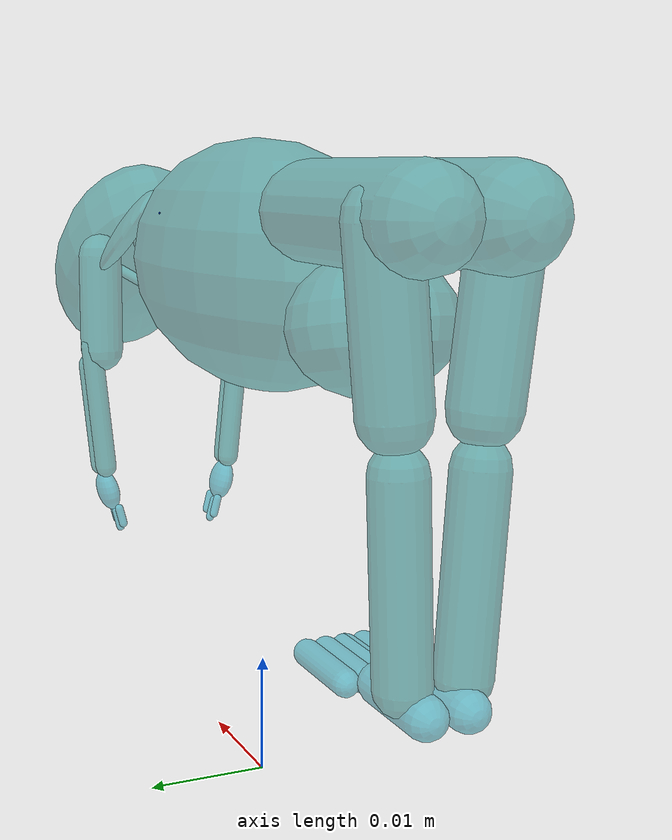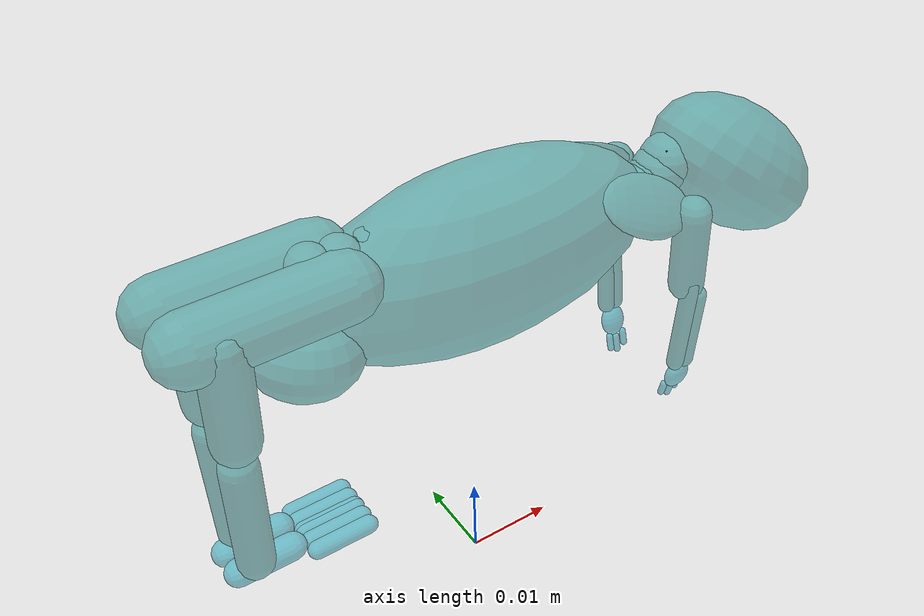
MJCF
<mujoco model="CyberMice">
    <compiler meshdir="meshes" balanceinertia="true" angle="radian" eulerseq="xyz" />

    <option timestep="0.002" />
    <size njmax="1000" nconmax="400" nkey="1" nuser_jnt="1" />
    <statistic extent="1" />

    <default class="main">
        <joint limited="true" stiffness=".0" armature="1e-05" damping="1e-05" />
        <site rgba="0 0 0.8 1" size="0.0001 0.0001 0.0001" />
        <tendon limited="false" width="0.0001" rgba="0.95 0.3 0.3 1" />
        <default class="forelimbs">
            <geom type="mesh" contype="3" conaffinity="2" friction="0.7" solref="0.015 1" solimp="0.95 0.99 0.003" material="bone" />
        </default>
        <default class="muscle">
            <general ctrllimited="true" ctrlrange="0 1" dyntype="muscle" gaintype="muscle" biastype="muscle" dynprm="0.01 0.04 0 0 0 0 0 0 0 0" gainprm="0.75 1.05 -1 200 0.5 1.6 1.5 1.3 1.2 0" biasprm="0.75 1.05 -1 200 0.5 1.6 1.5 1.3 1.2 0" />
        </default>
        <default class="motor">
            <general gainprm="5 0 0 0 0 0 0 0 0 0" />
        </default>
        <default class="sensor">
            <site group="4" />
        </default>

        <default class="Lumbar">
            <joint group="3" pos="0.003 0 -0.003" armature="1e-05" damping="0.03"/>
            <general gainprm="0.15"/>
            <default class="Lumbar_x">
                <joint stiffness="0.03" range="-0.25 0.25"/>
                <tendon range="-1 1"/>
            </default>
            <default class="Lumbar_y">
                <joint stiffness="0.03" range="-0.25 0.25"/>
                <tendon range="-1 1"/>
            </default>
            <default class="Lumbar_z">
                <joint stiffness="0.02" range="-0.25 0.25"/>
                <tendon range="-1 1"/>
                <general gainprm="0.4"/>
            </default>
        </default>

        <default class="Cervical">
            <joint group="3" pos="-0.02 0 -0.05" stiffness="2.0" armature="0.001" damping="1.0"/>
            <default class="Cervical_x">
                <joint range="-0.18 0.18"/>
                <tendon range="-1 1"/>
                <general gainprm="2.5"/>
            </default>
            <default class="Cervical_y">
                <joint range="-0.18 0.18"/>
                <tendon range="-1 1"/>
                <general gainprm="2.5"/>
            </default>
            <default class="Cervical_z">
                <joint range="-0.18 0.18"/>
                <tendon range="-1 1"/>
                <general gainprm="2.5"/>
            </default>
        </default>

        <default class="Caudal">
            <joint group="3" stiffness="1e-05" damping="0.002"/>
            <general gainprm="0.005"/>
            <default class="Caudal_z">
                <joint range="-0.08726646259971647 0.08726646259971647"/>
                <tendon range="-0.05 0.05"/>
            </default>
            <default class="Caudal_y">
                <joint range="-0.08726646259971647 0.08726646259971647"/>
                <tendon range="-0.2 0.2"/>
            </default>
            <default class="Caudal_x">
                <joint range="-0.08726646259971647 0.08726646259971647"/>
                <tendon range="-0.2 0.2"/>
            </default>
        </default>

        <default class="collision">
            <geom contype="1" conaffinity="1" condim="1" group="1"/>
            <default class="collision_primitive">
                <geom type="capsule" group="1" rgba="0 0.5 0.5 0.5" density="500.0"/>
                <default class="collision_primitive_paw">
                    <geom condim="3" priority="1" rgba="0 0.6 0.7 0.5" friction="1.5 0.005 0.0001"/>
                </default>
                <default class="nonself_collision_primitive">
                    <geom conaffinity="0" rgba="0 0.5 0.5 0.5"/>
                </default>
            </default>
        </default>

    </default>

    <asset>
        <texture name="skybox" type="skybox" builtin="gradient" rgb1="0.4 0.6 0.8" rgb2="0 0 0" mark="random" markrgb="1 1 1" width="800" height="800" />
        <texture name="plane" type="2d" builtin="checker" rgb1="0.2 0.3 0.4" rgb2="0.3 0.4 0.5" width="10" height="10" />
        <material name="plane" texture="plane" texrepeat="5 5" reflectance="0.2" />
        <texture name="grid" type="2d" builtin="checker" rgb1="0.1 0.2 0.3" rgb2="0.2 0.3 0.4" mark="edge" markrgb="0.2 0.3 0.4" width="300" height="300" />
        <material name="grid" texture="grid" texrepeat="1 1" texuniform="true" reflectance="0.2" />
    </asset>

    <worldbody>
        <body name="CyberMice" pos="0 0 0.05">
            <camera name="side" mode="track" pos="0.008 -0.256 0.180" xyaxes="1.000 0.007 -0.000 -0.003 0.486 0.874"/>
            <camera name="back" mode="track" pos="-0.162 0.001 0.133" xyaxes="-0.003 -1.000 0.000 0.494 -0.002 0.869"/>

            <light name="top" mode="trackcom" exponent="10" cutoff="45" ambient="0 0 0" pos="0 0 5" directional="false" />

            <freejoint name="free"/>

            <geom name="Chest_collision" class="nonself_collision_primitive" type="ellipsoid" size="0.02 0.008 0.01" density="468.251260009" pos="0.002 0 -0.007" euler="0 0 0"/>

            <body name="C7" pos="0.01875 0 -0.008" gravcomp="0">
                <geom name="C7_collision" class="nonself_collision_primitive" type="sphere" pos="0.001 0 0" size="0.003" density="300.0"/>

                <joint name="T_C7_x" class="Cervical_x" pos="0 0 0" axis="1 0 0" range="-0.18 0.18"/>

                <body name="C6" pos="0.00075 0.00 0.0001" gravcomp="0">
                    <geom name="C6_collision" class="nonself_collision_primitive" type="sphere" pos="0.001 0 0" size="0.003" density="300.0"/>

                    <joint name="C7_C6_y" class="Cervical_y" pos="0 0 0" axis="0 1 0" range="-0.18 0.18"/>

                    <body name="C5" pos="0.001 0 0.0004" gravcomp="0">
                        <geom name="C5_collision" class="nonself_collision_primitive" type="sphere" pos="0.001 0 0" size="0.003" density="300.0"/>

                        <joint name="C6_C5_z" class="Cervical_z" pos="0 0 0" axis="-0.2588 0 0.9659" range="-0.18 0.18"/>

                        <body name="C4" pos="0.001 0 0.0003" gravcomp="0">
                            <geom name="C4_collision" class="nonself_collision_primitive" type="sphere" pos="0.001 0 0" size="0.003" density="300.0"/>

                            <joint name="C5_C4_x" class="Cervical_x" pos="0 0 0" axis="0.9659 0 0.2588" range="-0.18 0.18"/>

                            <body name="C3" pos="0.001 0 0.0005" euler="0 0 0" gravcomp="0">
                                <geom name="C3_collision" class="nonself_collision_primitive" type="sphere" pos="0.001 0 0" size="0.003" density="300.0"/>

                                <joint name="C4_C3_y" class="Cervical_y" pos="0 0 0" axis="0 1 0" range="-0.18 0.18"/>

                                <body name="C2" pos="0.001 0 0.001" gravcomp="0">
                                    <geom name="C2_collision" class="nonself_collision_primitive" type="sphere" pos="0.001 0 0" size="0.003" density="300.0"/>

                                    <joint name="C3_C2_z" class="Cervical_z" pos="0 0 0" axis="-0.4226 0 0.9063" range="-0.18 0.18"/>

                                    <body name="C1" pos="0.001 0 0.001" gravcomp="0">
                                        <geom name="C1_collision" class="nonself_collision_primitive" type="sphere" pos="0.001 0 0" size="0.003" density="300.0"/>

                                        <joint name="C2_C1_x" class="Cervical_x" pos="0 0 0" axis="0.9063 0 0.4226" range="-0.18 0.18"/>

                                        <body name="Head" pos="0.001 0 0.001" gravcomp="0">
                                            <geom name="Head_collision" class="collision_primitive" type="ellipsoid" size="0.0125 0.0075 0.007" density="703.10773841" pos="0.01 0 -0.005" euler="0 0.7 0"/>

                                            <camera name="egocentric" fovy="80.0" pos="0.033 0.000 0.052" xyaxes="0.105 -0.995 -0.000 0.595 0.063 0.801"/>

                                            <site name="Head"/>

                                            <joint name="C1_head_y" class="Cervical_y" pos="0 0 0" axis="0 1 0" range="-0.18 0.18"/>
                                            <joint name="C1_head_z" class="Cervical_z" pos="0 0 0" axis="-0.4226 0 0.9063" range="-0.18 0.18"/>

                                        </body>
                                    </body>
                                </body>
                            </body>
                        </body>
                    </body>
                </body>
            </body>

            <body name="RScapula" pos="0.0135 0.0 -0.009" euler="0 0.0 0" gravcomp="0">
                <geom name="RScapula_collision" class="nonself_collision_primitive" type="ellipsoid" size="0.001 0.0035 0.0065" density="513.564646393" pos="0.005 -0.0055 0.004" euler="0 2 0.9" group="1"/>

                <joint name="RScapula_r1" pos="0.005 0 0" axis="1 0 0" range="-0.08726646259971647 0.08726646259971647" group="0" />
                <joint name="RScapula_r2" pos="0.005 0 0" axis="0 1 0" range="-0.08726646259971647 0.08726646259971647" group="0" />
                <joint name="RScapula_r3" pos="0.005 -0.006 0.0055" axis="1 -0.1 -0.5" range="-0.08726646259971647 0.08726646259971647" group="0" />
                <joint name="RScapula_r4" pos="0.005 -0.006 0.0055" axis="0 -1 1" range="-0.08726646259971647 0.08726646259971647" group="0" />

                <body name="RHumerus" pos="0.01 -0.006 0.0015" euler="0 0 0" gravcomp="0">
                    <joint name="RShoulder_flexion" pos="0 0 0" axis="0 -1 0" range="-1.2217304763960306 1.2217304763960306" group="0" />
                    <joint name="RShoulder_adduction" pos="0 0 0" axis="1 0 0" range="-1.0471975511965976 0.7853981633974483" group="0" />
                    <joint name="RShoulder_rotation" pos="0 0 0" axis="0 0 1" range="-0.17453292519943295 1.5707963267948966" group="0" />
                    <geom name="RHumerus_collision" class="collision_primitive" size="0.002 0.0045" pos="0.0005 -0.0005 -0.0045" euler="0 0 0"/>

                    <body name="RUlna" pos="0.001 -0.001 -0.01" euler="0 0 0" gravcomp="0">
                        <joint name="RElbow_flexion" pos="0 0 0" axis="0 -1 0" range="0.0 2.5" group="0" />
                        <geom name="RUlna_collision" class="collision_primitive" size="0.001 0.006" pos="-0.0008 0 -0.0045" euler="0.1 0 0"/>

                        <body name="RRadius" pos="0 0 -0.0075" gravcomp="0">
                            <geom name="RRadius_collision" class="collision_primitive" size="0.001 0.005" pos="0.0005 0 0.002" euler="0.1 0 0"/>

                            <body name="RCarpi" pos="0 0 -0.0035" gravcomp="0">
                                <joint name="RWrist_adduction" pos="0 0 0" axis="0 -1 0" range="-0.7853981633974483 0.7853981633974483" group="0" />
                                <joint name="RWrist_flexion" pos="0 0 0" axis="1 0 0" range="-1.5707963267948966 1.5707963267948966" group="0" />
                                <geom name="RHand_collision" class="collision_primitive_paw" type="ellipsoid" size="0.0016 0.001 0.002" density="2531.78122831" pos="0 0.001 -0.002" euler="0.25 0 0.1"/>
                                <geom name="RFinger_0_collision" class="collision_primitive_paw" size="0.0004 0.0008" pos="0.001 0.002 -0.0045" euler="0.25 0 0.1"/>
                                <geom name="RFinger_1_collision" class="collision_primitive_paw" size="0.0004 0.0009" pos="0 0.002 -0.005" euler="0.25 0 0.1"/>
                                <geom name="RFinger_2_collision" class="collision_primitive_paw" size="0.0004 0.0008" pos="-0.001 0.002 -0.0045" euler="0.25 0 0.1"/>

                            </body>
                        </body>
                    </body>
                </body>
            </body>

            <body name="RClavicle" pos="0.021 -0.00 -0.0125" gravcomp="0">
                <geom name="RClavicle_collision" class="collision_primitive" size="0.0005 0.004" pos="0.003 -0.0035 0.003" euler="1.0 0.5 0" group="1"/>
                <joint name="RClavicle_r1" pos="0 0 0" axis="1 0 0" range="-0.17453292519943295 0.17453292519943295" group="0" />
                <joint name="RClavicle_r2" pos="0 0 0" axis="0 0 1" range="-0.17453292519943295 0.17453292519943295" group="0" />
            </body>

            <body name="LScapula" pos="0.0135 0.0 -0.009" gravcomp="0">
                <geom name="LScapula_collision" class="nonself_collision_primitive" type="ellipsoid" size="0.001 0.0035 0.0065" density="513.564646393" pos="0.005 0.0055 0.004" euler="0 2 -0.9" group="1"/>

                <joint name="LScapula_r1" pos="0.005 0 0" axis="-1 0 0" range="-0.08726646259971647 0.08726646259971647" group="1" />
                <joint name="LScapula_r2" pos="0.005 0 0" axis="0 1 0" range="-0.08726646259971647 0.08726646259971647" group="1" />
                <joint name="LScapula_r3" pos="0.005 0.006 0.0055" axis="-1 -0.1 0.5" range="-0.08726646259971647 0.08726646259971647" group="1" />
                <joint name="LScapula_r4" pos="0.005 0.006 0.0055" axis="0 -1 -1" range="-0.08726646259971647 0.08726646259971647" group="1" />

                <body name="LHumerus" pos="0.01 0.006 0.0015" euler="0 0 0" gravcomp="0">
                    <joint name="LShoulder_flexion" pos="0 0 0" axis="0 -1 0" range="-1.2217304763960306 1.2217304763960306" group="1" />
                    <joint name="LShoulder_adduction" pos="0 0 0" axis="-1 0 0" range="-1.0471975511965976 0.7853981633974483" group="1" />
                    <joint name="LShoulder_rotation" pos="0 0 0" axis="0 0 -1" range="-0.17453292519943295 1.5707963267948966" group="1" />
                    <geom name="LHumerus_collision" class="collision_primitive" size="0.002 0.0045" pos="0.0005 0.0005 -0.0045" euler="0 0 0"/>

                    <body name="LUlna" pos="0.001 0.001 -0.01" euler="0 0 0" gravcomp="0">
                        <joint name="LElbow_flexion" pos="0 0 0" axis="0 -1 0" range="0.0 2.5" group="1" />
                        <geom name="LUlna_collision" class="collision_primitive" size="0.001 0.006" pos="-0.0008 0 -0.0045" euler="-0.1 0 0"/>

                        <body name="LRadius" pos="0 0 -0.0075" gravcomp="0">
                            <geom name="LRadius_collision" class="collision_primitive" size="0.001 0.005" pos="0.0005 0 0.002" euler="-0.1 0 0"/>

                            <body name="LCarpi" pos="0 0 -0.0035" gravcomp="0">
                                <joint name="LWrist_adduction" pos="0 0 0" axis="0 -1 0" range="-0.7853981633974483 0.7853981633974483" group="1" />
                                <joint name="LWrist_flexion" pos="0 0 0" axis="-1 0 0" range="-1.5707963267948966 1.5707963267948966" group="1" />
                                <geom name="LHand_collision" class="collision_primitive_paw" type="ellipsoid" size="0.0016 0.001 0.002" density="2531.78122831" pos="0 -0.001 -0.002" euler="-0.25 0 0.1"/>
                                <geom name="LFinger_0_collision" class="collision_primitive_paw" size="0.0004 0.0008" pos="0.001 -0.002 -0.0045" euler="-0.25 0 0.1"/>
                                <geom name="LFinger_1_collision" class="collision_primitive_paw" size="0.0004 0.0009" pos="0 -0.002 -0.005" euler="-0.25 0 0.1"/>
                                <geom name="LFinger_2_collision" class="collision_primitive_paw" size="0.0004 0.0008" pos="-0.001 -0.002 -0.0045" euler="-0.25 0 0.1"/>
                            </body>
                        </body>
                    </body>
                </body>
            </body>

            <body name="LClavicle" pos="0.021 -0.00 -0.0125" gravcomp="0">
                <geom name="LClavicle_collision" class="collision_primitive" size="0.0005 0.004" pos="0.003 0.0035 0.003" euler="-1.0 0.5 0" group="1"/>
                <joint name="LClavicle_r1" pos="0 0 0" axis="1 0 0" range="-0.17453292519943295 0.17453292519943295" group="1" />
                <joint name="LClavicle_r2" pos="0 0 0" axis="0 0 1" range="-0.17453292519943295 0.17453292519943295" group="1" />
            </body>

            <body name="L1" pos="0.0 0.00 0.00" gravcomp="0">
                <geom name="L1_collision" class="nonself_collision_primitive" type="sphere" size="0.0025" pos="-0.002 0 0"/>

                <joint name="T_L1_x" class="Lumbar_x" pos="0 0 0.001" axis="0.9848 0 0.1736" range="-0.25 0.25"/>

                <body name="L2" pos="-0.004 0 -0.00015" gravcomp="0">
                    <geom name="L2_collision" class="nonself_collision_primitive" type="sphere" size="0.0025" pos="-0.001 0 -0.00075"/>

                    <joint name="L1_L2_y" class="Lumbar_y" pos="0 0 0" axis="0 1 0" range="-0.25 0.25"/>

                    <body name="L3" pos="-0.00225 0 -0.00075" euler="0 0 0" gravcomp="0">
                        <geom name="L3_collision" class="nonself_collision_primitive" type="sphere" size="0.0025" pos="-0.001 0 -0.0005"/>

                        <joint name="L2_L3_z" class="Lumbar_z" pos="0 0 0" axis="-0.1736 0 0.9848" range="-0.25 0.25"/>

                        <body name="L4" pos="-0.00275 0 -0.0006" euler="0 0 0" gravcomp="0">
                            <geom name="L4_collision" class="nonself_collision_primitive" type="sphere" size="0.0025" pos="-0.001 0 -0.00025"/>

                            <joint name="L3_L4_x" class="Lumbar_x" pos="0 0 0" axis="1 0 0" range="-0.25 0.25"/>

                            <body name="L5" pos="-0.0035 0 -0.000" gravcomp="0">
                                <geom name="L5_collision" class="nonself_collision_primitive" type="sphere" size="0.0025" pos="-0.001 0 0"/>

                                <joint name="L4_L5_y" class="Lumbar_y" pos="0 0 0" axis="0 1 0" range="-0.25 0.25"/>

                                <body name="L6" pos="-0.003 0 -0.000" gravcomp="0">
                                    <geom name="L6_collision" class="nonself_collision_primitive" type="sphere" size="0.0025" pos="-0.001 0 0.00025"/>

                                    <joint name="L5_L6_z" class="Lumbar_z" pos="0 0 0" axis="0 0 1" range="-0.25 0.25"/>

                                    <body name="Pelvis" pos="0.0025 0.00 -0.00175" euler="0 0 0" gravcomp="0">
                                        <geom name="RPelvis_collision" class="nonself_collision_primitive" size="0.0035 0.0075 0" density="1548.57736929" pos="-0.009 -0.003 0.001" euler="0 1.57 0"/>
                                        <geom name="LPelvis_collision" class="nonself_collision_primitive" size="0.0035 0.0075 0" density="1548.57736929" pos="-0.009 0.003 0.001" euler="0 1.57 0"/>
                                        <geom name="collision_pelvis_gut" class="nonself_collision_primitive" type="ellipsoid" size="0.006 0.006 0.005" density="1548.57736929" pos="-0.005 0 -0.0065" euler="0 0.2 0"/>

                                        <joint name="L6_S1_x" class="Lumbar_x" pos="-0.005 0 0.002" axis="1 0 0" range="-0.25 0.25"/>
                                        <joint name="L6_S1_y" class="Lumbar_y" pos="-0.005 0 0.002" axis="0 1 0" range="-0.25 0.25"/>
                                        <joint name="L6_S1_z" class="Lumbar_z" pos="-0.005 0 0.002" axis="0 0 1" range="-0.25 0.25"/>

                                        <body name="RFemur" pos="-0.013 -0.0028 0.002" gravcomp="0">
                                            <joint name="RHip_rotation" pos="0 0 0" axis="0 0 1" range="-0.5 0.5" group="3" />
                                            <joint name="RHip_flexion" pos="0 0 0" axis="0 -1 0" range="-1.5707963267948966 1.5707963267948966" group="3" />
                                            <joint name="RHip_adduction" pos="0 0 0" axis="1 0 0" range="-1.0471975511965976 0.5235987755982988" group="3" />

                                            <geom name="RFemur_collision" class="collision_primitive" size="0.0025 0.006" density="1561.75550556" pos="-0.001 -0.001 -0.007" euler="0.1 0 0"/>

                                            <body name="R_Leg" pos="-0.001 0 -0.0135" gravcomp="0">
                                                <joint name="RKnee_flexion" pos="0 0 0" axis="0 1 0" range="0.0 2.5" group="3" />
                                                <geom name="R_leg_collision" class="collision_primitive" size="0.002 0.007" density="1302.86687267" pos="-0.0002 0.0002 -0.01" euler="0.05 0 0"/>

                                                <body name="RPedal" pos="-0.001 0.00125 -0.0184" gravcomp="0">
                                                    <joint name="RAnkle_flexion" pos="0 0 0" axis="0 -1 0" range="-1.0471975511965976 1.0471975511965976" group="3" />
                                                    <joint name="RAnkle_rotation" pos="0 0 0" axis="1 0 0" range="-0.3490658503988659 0.3490658503988659" group="3" />

                                                    <geom name="RFoot_collision" class="collision_primitive_paw" size="0.0015 0.003" density="2041.15978228" pos="0.002 0 0" euler="0 1.57 0"/>
                                                    <geom name="RToe_0_collision" class="collision_primitive_paw" size="0.001 0.003" density="2041.15978228" pos="0.01 0.0015 -0.0005" euler="0 1.57 0"/>
                                                    <geom name="RToe_1_collision" class="collision_primitive_paw" size="0.001 0.003" density="2041.15978228" pos="0.01 0 -0.0005" euler="0 1.57 0"/>
                                                    <geom name="RToe_2_collision" class="collision_primitive_paw" size="0.001 0.003" density="2041.15978228" pos="0.01 -0.0015 -0.0005" euler="0 1.57 0"/>
                                                </body>
                                            </body>
                                        </body>

                                        <body name="LFemur" pos="-0.013 0.0028 0.002" gravcomp="0">
                                            <joint name="LHip_rotation" pos="0 0 0" axis="0 0 -1" range="-0.5 0.5" group="4" />
                                            <joint name="LHip_flexion" pos="0 0 0" axis="0 -1 0" range="-1.5707963267948966 1.5707963267948966" group="4" />
                                            <joint name="LHip_adduction" pos="0 0 0" axis="-1 0 0" range="-1.0471975511965976 0.5235987755982988" group="4" />

                                            <geom name="LFemur_collision" class="collision_primitive" size="0.0025 0.006" density="1561.75550556" pos="-0.001 0.001 -0.007" euler="-0.1 0 0"/>

                                            <body name="LLeg" pos="-0.001 0 -0.0135" gravcomp="0">
                                                <joint name="LKnee_flexion" pos="0 0 0" axis="0 1 0" range="0.0 2.5" group="4" />
                                                <geom name="L_leg_collision" class="collision_primitive" size="0.002 0.007" density="1302.86687267" pos="-0.0002 -0.0002 -0.01" euler="-0.05 0 0"/>

                                                <body name="LPedal" pos="-0.001 -0.00125 -0.0184" gravcomp="0">
                                                    <joint name="LAnkle_flexion" pos="0 0 0" axis="0 -1 0" range="-1.0471975511965976 1.0471975511965976" group="4" />
                                                    <joint name="LAnkle_rotation" pos="0 0 0" axis="-1 0 0" range="-0.3490658503988659 0.3490658503988659" group="4" />

                                                    <geom name="LFoot_collision" class="collision_primitive_paw" size="0.0015 0.003" density="2041.15978228" pos="0.002 0 0" euler="0 1.57 0"/>
                                                    <geom name="LToe_0_collision" class="collision_primitive_paw" size="0.001 0.003" density="2041.15978228" pos="0.01 -0.0015 -0.0005" euler="0 1.57 0"/>
                                                    <geom name="LToe_1_collision" class="collision_primitive_paw" size="0.001 0.003" density="2041.15978228" pos="0.01 0 -0.0005" euler="0 1.57 0"/>
                                                    <geom name="LToe_2_collision" class="collision_primitive_paw" size="0.001 0.003" density="2041.15978228" pos="0.01 0.0015 -0.0005" euler="0 1.57 0"/>

                                                </body>
                                            </body>
                                        </body>

                                    </body>
                                </body>
                            </body>
                        </body>
                    </body>
                </body>
            </body>

        </body>
    </worldbody>

    <tendon>
        <fixed name="Cervical_x" class="Cervical_x">
            <joint joint="T_C7_x" coef="0.334"/>
            <joint joint="C5_C4_x" coef="0.333"/>
            <joint joint="C2_C1_x" coef="0.333"/>
        </fixed>

        <fixed name="Cervical_y" class="Cervical_y">
            <joint joint="C7_C6_y" coef="0.334"/>
            <joint joint="C4_C3_y" coef="0.333"/>
            <joint joint="C1_head_y" coef="0.333"/>
        </fixed>

        <fixed name="Cervical_z" class="Cervical_z">
            <joint joint="C6_C5_z" coef="0.334"/>
            <joint joint="C3_C2_z" coef="0.333"/>
            <joint joint="C1_head_z" coef="0.333"/>
        </fixed>

        <fixed name="Lumbar_x" class="Lumbar_x">
            <joint joint="T_L1_x" coef="0.334"/>
            <joint joint="L3_L4_x" coef="0.332"/>
            <joint joint="L6_S1_x" coef="0.334"/>
        </fixed>

        <fixed name="Lumbar_y" class="Lumbar_y">
            <joint joint="L1_L2_y" coef="0.334"/>
            <joint joint="L4_L5_y" coef="0.332"/>
            <joint joint="L6_S1_y" coef="0.334"/>
        </fixed>

        <fixed name="Lumbar_z" class="Lumbar_z">
            <joint joint="L2_L3_z" coef="0.142"/>
            <joint joint="L5_L6_z" coef="0.142"/>
            <joint joint="L6_S1_z" coef="0.148"/>
        </fixed>

    </tendon>

    <actuator>
        <motor name="T_C7_x" gear="1" joint="T_C7_x" ctrllimited="true" ctrlrange="-1 1"/>
        <motor name="C7_C6_y" gear="1" joint="C7_C6_y" ctrllimited="true" ctrlrange="-1 1"/>
        <motor name="C6_C5_z" gear="1" joint="C6_C5_z" ctrllimited="true" ctrlrange="-1 1"/>
        <motor name="C5_C4_x" gear="1" joint="C5_C4_x" ctrllimited="true" ctrlrange="-1 1"/>
        <motor name="C4_C3_y" gear="1" joint="C4_C3_y" ctrllimited="true" ctrlrange="-1 1"/>
        <motor name="C3_C2_z" gear="1" joint="C3_C2_z" ctrllimited="true" ctrlrange="-1 1"/>
        <motor name="C2_C1_x" gear="1" joint="C2_C1_x" ctrllimited="true" ctrlrange="-1 1"/>
        <motor name="C1_head_y" gear="1" joint="C1_head_y" ctrllimited="true" ctrlrange="-1 1"/>
        <motor name="C1_head_z" gear="1" joint="C1_head_z" ctrllimited="true" ctrlrange="-1 1"/>

        <motor name="RScapula_r1" gear="1" joint="RScapula_r1" ctrllimited="true" ctrlrange="-1 1"/>
        <motor name="RScapula_r2" gear="1" joint="RScapula_r2" ctrllimited="true" ctrlrange="-1 1"/>
        <motor name="RScapula_r3" gear="1" joint="RScapula_r3" ctrllimited="true" ctrlrange="-1 1"/>
        <motor name="RScapula_r4" gear="1" joint="RScapula_r4" ctrllimited="true" ctrlrange="-1 1"/>

        <motor name="RShoulder_flexion" gear="1" joint="RShoulder_flexion" ctrllimited="true" ctrlrange="-1 1"/>
        <motor name="RShoulder_adduction" gear="1" joint="RShoulder_adduction" ctrllimited="true" ctrlrange="-1 1"/>
        <motor name="RShoulder_rotation" gear="1" joint="RShoulder_rotation" ctrllimited="true" ctrlrange="-1 1"/>
        <motor name="RElbow_flexion" gear="1" joint="RElbow_flexion" ctrllimited="true" ctrlrange="-1 1"/>

        <motor name="RWrist_adduction" gear="1" joint="RWrist_adduction" ctrllimited="true" ctrlrange="-1 1"/>
        <motor name="RWrist_flexion" gear="1" joint="RWrist_flexion" ctrllimited="true" ctrlrange="-1 1"/>

        <motor name="RClavicle_r1" gear="1" joint="RClavicle_r1" ctrllimited="true" ctrlrange="-1 1"/>
        <motor name="RClavicle_r2" gear="1" joint="RClavicle_r2" ctrllimited="true" ctrlrange="-1 1"/>

        <motor name="LScapula_r1" gear="1" joint="LScapula_r1" ctrllimited="true" ctrlrange="-1 1"/>
        <motor name="LScapula_r2" gear="1" joint="LScapula_r2" ctrllimited="true" ctrlrange="-1 1"/>
        <motor name="LScapula_r3" gear="1" joint="LScapula_r3" ctrllimited="true" ctrlrange="-1 1"/>
        <motor name="LScapula_r4" gear="1" joint="LScapula_r4" ctrllimited="true" ctrlrange="-1 1"/>

        <motor name="LShoulder_flexion" gear="1" joint="LShoulder_flexion" ctrllimited="true" ctrlrange="-1 1"/>
        <motor name="LShoulder_adduction" gear="1" joint="LShoulder_adduction" ctrllimited="true" ctrlrange="-1 1"/>
        <motor name="LShoulder_rotation" gear="1" joint="LShoulder_rotation" ctrllimited="true" ctrlrange="-1 1"/>
        <motor name="LElbow_flexion" gear="1" joint="LElbow_flexion" ctrllimited="true" ctrlrange="-1 1"/>

        <motor name="LWrist_adduction" gear="1" joint="LWrist_adduction" ctrllimited="true" ctrlrange="-1 1"/>
        <motor name="LWrist_flexion" gear="1" joint="LWrist_flexion" ctrllimited="true" ctrlrange="-1 1"/>

        <motor name="LClavicle_r1" gear="1" joint="LClavicle_r1" ctrllimited="true" ctrlrange="-1 1"/>
        <motor name="LClavicle_r2" gear="1" joint="LClavicle_r2" ctrllimited="true" ctrlrange="-1 1"/>

        <motor name="T_L1_x" gear="1" joint="T_L1_x" ctrllimited="true" ctrlrange="-1 1"/>
        <motor name="L1_L2_y" gear="1" joint="L1_L2_y" ctrllimited="true" ctrlrange="-1 1"/>
        <motor name="L2_L3_z" gear="1" joint="L2_L3_z" ctrllimited="true" ctrlrange="-1 1"/>
        <motor name="L3_L4_x" gear="1" joint="L3_L4_x" ctrllimited="true" ctrlrange="-1 1"/>
        <motor name="L4_L5_y" gear="1" joint="L4_L5_y" ctrllimited="true" ctrlrange="-1 1"/>
        <motor name="L5_L6_z" gear="1" joint="L5_L6_z" ctrllimited="true" ctrlrange="-1 1"/>
        <motor name="L6_S1_x" gear="1" joint="L6_S1_x" ctrllimited="true" ctrlrange="-1 1"/>
        <motor name="L6_S1_y" gear="1" joint="L6_S1_y" ctrllimited="true" ctrlrange="-1 1"/>
        <motor name="L6_S1_z" gear="1" joint="L6_S1_z" ctrllimited="true" ctrlrange="-1 1"/>

        <motor name="RHip_rotation" gear="1" joint="RHip_rotation" ctrllimited="true" ctrlrange="-1 1"/>
        <motor name="RHip_flexion" gear="1" joint="RHip_flexion" ctrllimited="true" ctrlrange="-1 1"/>
        <motor name="RHip_adduction" gear="1" joint="RHip_adduction" ctrllimited="true" ctrlrange="-1 1"/>

        <motor name="RKnee_flexion" gear="1" joint="RKnee_flexion" ctrllimited="true" ctrlrange="-1 1"/>

        <motor name="RAnkle_flexion" gear="1" joint="RAnkle_flexion" ctrllimited="true" ctrlrange="-1 1"/>
        <motor name="RAnkle_rotation" gear="1" joint="RAnkle_rotation" ctrllimited="true" ctrlrange="-1 1"/>

        <motor name="LHip_rotation" gear="1" joint="LHip_rotation" ctrllimited="true" ctrlrange="-1 1"/>
        <motor name="LHip_flexion" gear="1" joint="LHip_flexion" ctrllimited="true" ctrlrange="-1 1"/>
        <motor name="LHip_adduction" gear="1" joint="LHip_adduction" ctrllimited="true" ctrlrange="-1 1"/>

        <motor name="LKnee_flexion" gear="1" joint="LKnee_flexion" ctrllimited="true" ctrlrange="-1 1"/>

        <motor name="LAnkle_flexion" gear="1" joint="LAnkle_flexion" ctrllimited="true" ctrlrange="-1 1"/>
        <motor name="LAnkle_rotation" gear="1" joint="LAnkle_rotation" ctrllimited="true" ctrlrange="-1 1"/>
    </actuator>

    <equality>
        <weld name="RGlenohumeral Joint" active="true" body1="RScapula" body2="RClavicle" anchor="0.0015 -0.0065 0.0055" torquescale="1" />
        <weld name="LGlenohumeral Joint" active="true" body1="LScapula" body2="LClavicle" anchor="0.0015 0.0065 0.0055" torquescale="1" />
    </equality>

    <contact>
        <exclude body1="CyberMice" body2="RHumerus" />
        <exclude body1="RScapula" body2="RClavicle" />
        <exclude body1="RHumerus" body2="RClavicle" />
        <exclude body1="RHumerus" body2="RRadius" />
        <exclude body1="RUlna" body2="RCarpi" />
        <exclude body1="CyberMice" body2="LHumerus" />
        <exclude body1="LScapula" body2="LClavicle" />
        <exclude body1="LHumerus" body2="LClavicle" />
        <exclude body1="LHumerus" body2="LRadius" />
        <exclude body1="LUlna" body2="LCarpi" />

        <exclude body1="CyberMice" body2="C1" />
        <exclude body1="CyberMice" body2="C2" />
        <exclude body1="CyberMice" body2="C3" />
        <exclude body1="CyberMice" body2="C4" />
        <exclude body1="CyberMice" body2="C5" />
        <exclude body1="CyberMice" body2="C6" />
        <exclude body1="CyberMice" body2="Head" />
        <exclude body1="Head" body2="C2" />
        <exclude body1="Head" body2="C3" />
        <exclude body1="Head" body2="C4" />
        <exclude body1="Head" body2="C5" />
        <exclude body1="Head" body2="C6" />
        <exclude body1="C1" body2="C3" />
        <exclude body1="C1" body2="C4" />
        <exclude body1="C1" body2="C5" />
        <exclude body1="C1" body2="C6" />
        <exclude body1="C1" body2="C7" />
        <exclude body1="C2" body2="C4" />
        <exclude body1="C2" body2="C5" />
        <exclude body1="C2" body2="C6" />
        <exclude body1="C2" body2="C7" />
        <exclude body1="C3" body2="C5" />
        <exclude body1="C3" body2="C6" />
        <exclude body1="C3" body2="C7" />
        <exclude body1="C4" body2="C6" />
        <exclude body1="C4" body2="C7" />
        <exclude body1="C5" body2="C7" />

        <exclude body1="CyberMice" body2="L2" />
        <exclude body1="CyberMice" body2="L3" />
        <exclude body1="CyberMice" body2="L4" />
        <exclude body1="CyberMice" body2="L5" />
        <exclude body1="CyberMice" body2="L6" />
        <exclude body1="CyberMice" body2="Pelvis" />
        <exclude body1="L5" body2="Pelvis" />
        <exclude body1="L4" body2="Pelvis" />
    </contact>

    <sensor>
        <gyro name="gyro" site="Head" />
        <accelerometer name="accelerometer" site="Head"/>
        <velocimeter name="velocimeter" site="Head"/>
        <subtreelinvel name="torso_subtreelinvel" body="CyberMice" />
        <subtreecom name="body_com" body="CyberMice" />
    </sensor>
</mujoco>
